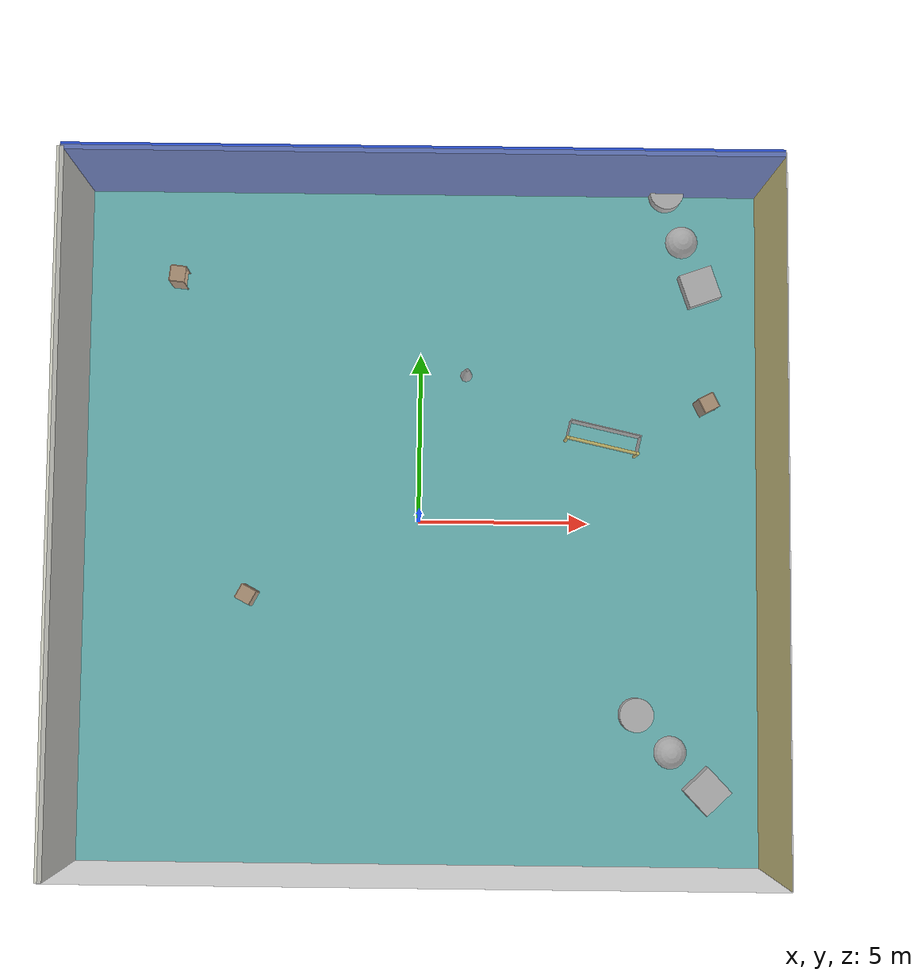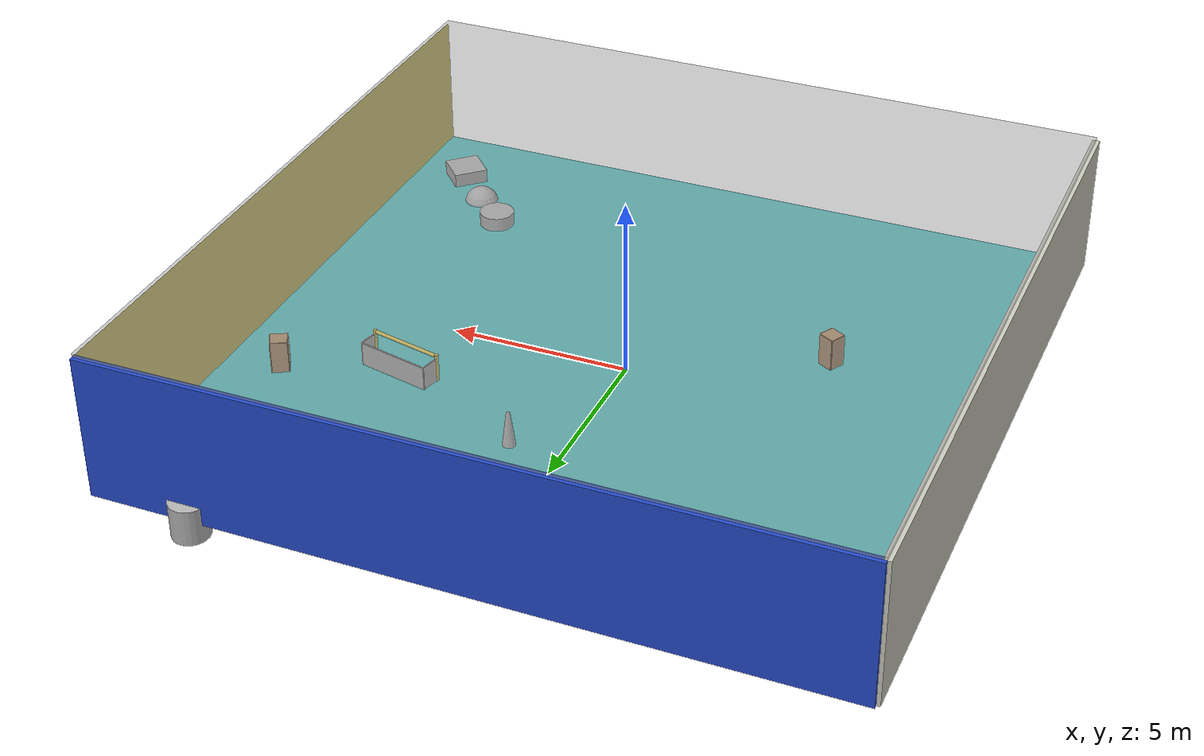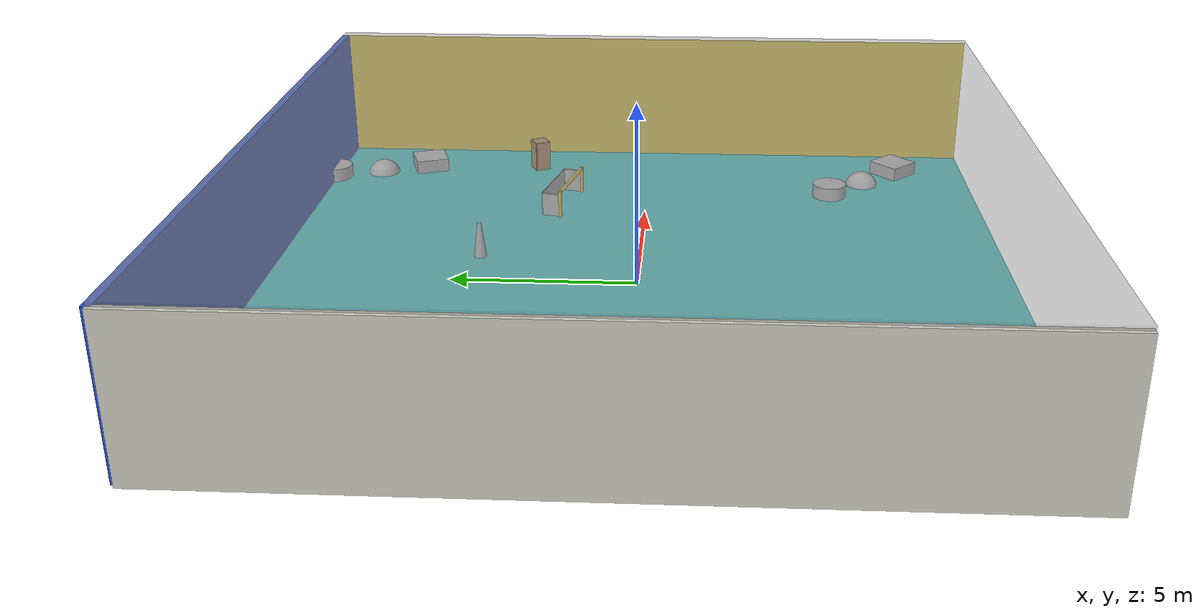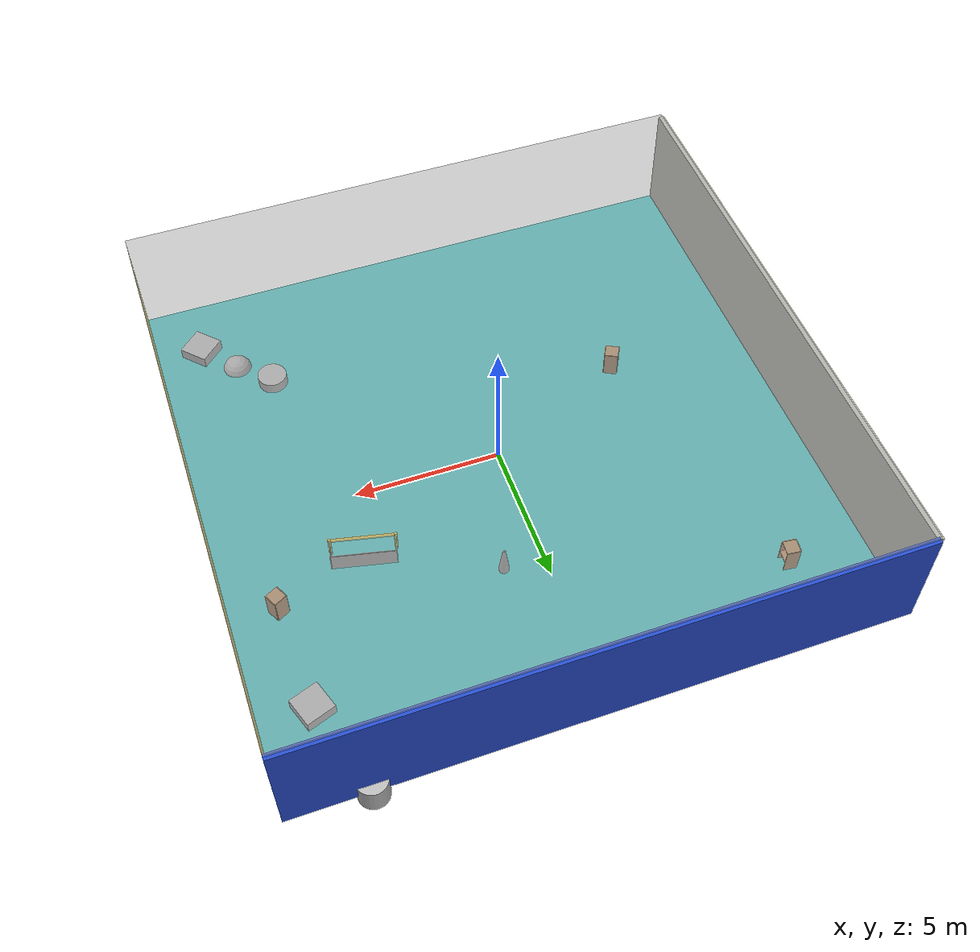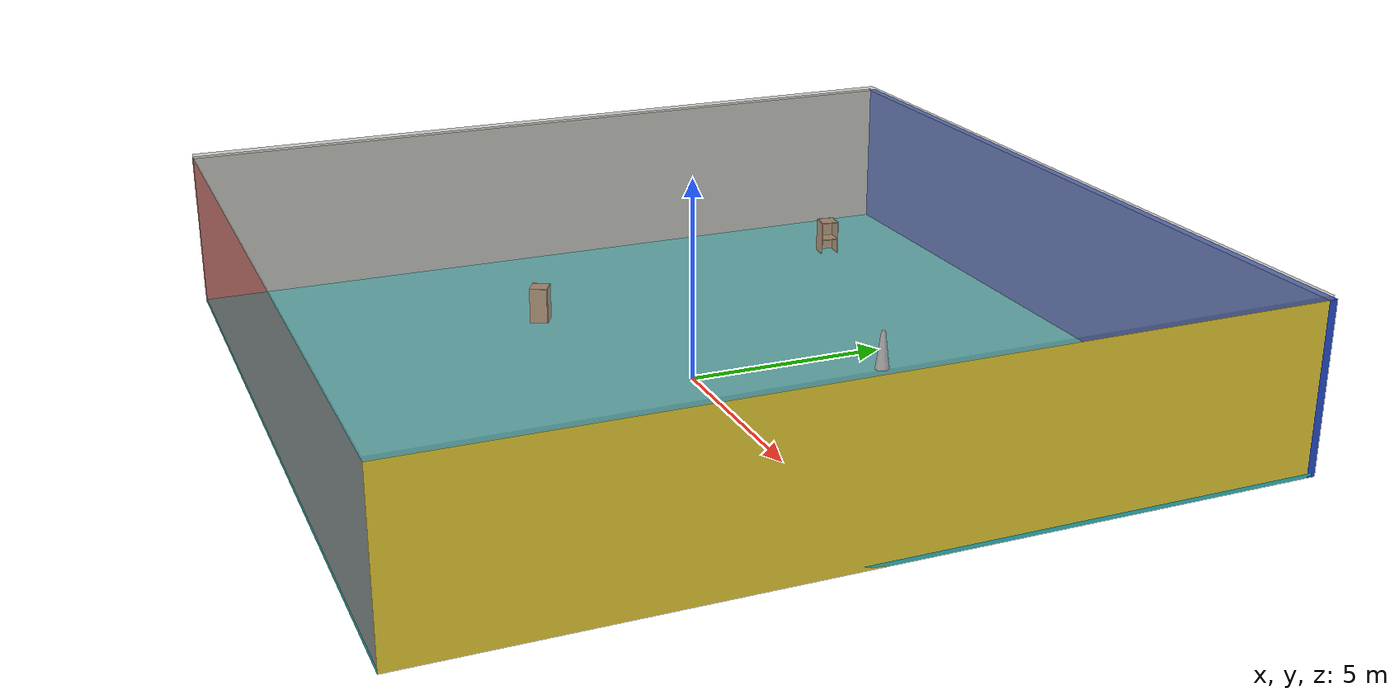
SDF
<sdf version="1.4">
 <world name="default">
  <physics type="ode">
   <max_step_size>0.001</max_step_size>
   <real_time_factor>1</real_time_factor>
   <real_time_update_rate>1000</real_time_update_rate>
   <gravity>0 0 -9.8</gravity>
  </physics>
  <scene><ambient>0.4 0.4 0.4 1</ambient><background>0.7 0.7 0.7 1</background><shadows>1</shadows></scene>
  <model name="Surrounding">
   <static>1</static>
   <link name="Ceiling">
    <collision name="Ceiling_Collision"><geometry><box><size>20 20 0.1</size></box></geometry></collision>
    <visual name="Ceiling_Visual">
     <geometry><box><size>20 20 0.1</size></box></geometry>
     <material>
      <script><uri>file://media/materials/scripts/gazebo.material</uri><name>Gazebo/GreyTransparent</name></script>
     </material>
    </visual>
    <pose>0 0 4.05 0 0 0</pose>
   </link>
   <link name="Wall_South">
    <collision name="Wall_South_Collision">
     <geometry><box><size>20 0 4</size></box></geometry>
     <pose>0 0 2 0 -0 0</pose>
    </collision>
    <visual name="Wall_South_Visual">
     <pose>0 0 2 0 -0 0</pose>
     <geometry><box><size>20 0 4</size></box></geometry>
     <material>
      <script><uri>file://media/materials/scripts/gazebo.material</uri><name>Gazebo/RedTransparent</name></script>
     </material>
    </visual>
    <velocity_decay><linear>0</linear><angular>0</angular></velocity_decay>
    <pose>0 -10 0 0 -0 0</pose>
   </link>
   <link name="Wall_East">
    <collision name="Wall_21_Collision">
     <geometry><box><size>20 0 4</size></box></geometry>
     <pose>0 0 2 0 -0 0</pose>
    </collision>
    <visual name="Wall_21_Visual">
     <pose>0 0 2 0 -0 0</pose>
     <geometry><box><size>20 0 4</size></box></geometry>
     <material>
      <script><uri>file://media/materials/scripts/gazebo.material</uri><name>Gazebo/ZincYellow</name></script>
     </material>
    </visual>
    <velocity_decay><linear>0</linear><angular>0</angular></velocity_decay>
    <pose>10 0 0 0 -0 1.5708</pose>
   </link>
   <link name="Wall_North">
    <collision name="Wall_22_Collision">
     <geometry><box><size>20 0.2 4</size></box></geometry>
     <pose>0 0 2 0 -0 0</pose>
    </collision>
    <visual name="Wall_22_Visual">
     <pose>0 0 2 0 -0 0</pose>
     <geometry><box><size>20 0.2 4</size></box></geometry>
     <material>
      <script><uri>file://media/materials/scripts/gazebo.material</uri><name>Gazebo/Blue</name></script>
     </material>
    </visual>
    <velocity_decay><linear>0</linear><angular>0</angular></velocity_decay>
    <pose>0 10 0 0 -0 0</pose>
   </link>
   <link name="Wall_West">
    <collision name="Wall_23_Collision">
     <geometry><box><size>20 0.2 4</size></box></geometry>
     <pose>0 0 2 0 -0 0</pose>
    </collision>
    <visual name="Wall_23_Visual">
     <pose>0 0 2 0 -0 0</pose>
     <geometry><box><size>20 0.2 4</size></box></geometry>
     <material>
      <script><uri>file://media/materials/scripts/gazebo.material</uri><name>Gazebo/PaintedWall</name></script>
     </material>
    </visual>
    <velocity_decay><linear>0</linear><angular>0</angular></velocity_decay>
    <pose>-10 0 0 0 0 -1.5708</pose>
   </link>
   <link name="Ground_link">
    <collision name="collision">
     <pose>0 0 .05 0 -0 0</pose>
     <geometry><box><size>20 20 0.1</size></box></geometry>
    </collision>
    <visual name="visual">
     <pose>0 0 .05 0 -0 0</pose>
     <geometry><box><size>20 20 0.1</size></box></geometry>
     <material>
      <script><uri>file://media/materials/scripts/gazebo.material</uri><name>Gazebo/Turquoise</name></script>
     </material>
    </visual>
   </link>
   <static>1</static>
  </model>
  <spherical_coordinates>
   <surface_model>EARTH_WGS84</surface_model>
   <latitude_deg>0</latitude_deg>
   <longitude_deg>0</longitude_deg>
   <elevation>0</elevation>
   <heading_deg>0</heading_deg>
  </spherical_coordinates>
  <light name="lightball_0" type="diffuse">
   <diffuse>0.8 0.8 0.8 1</diffuse>
   <specular>0.2 0.2 0.2 1</specular>
   <attenuation>
    <range>100</range>
    <constant>0.7</constant>
    <linear>0.01</linear>
    <quadratic>0.001</quadratic>
   </attenuation>
   <direction>-0.5 0.1 -0.9</direction>
   <pose>2.80467241656 -8.4963076628 0.643118882182 0 0 0</pose>
  </light>
  <include><uri>model://cabinet</uri><pose>-7.18162059289 7.18149237192 0 0 0 3.02356587497</pose></include>
  <include><uri>model://cabinet</uri><pose>-5.00201592903 -2.22174053541 0 0 0 1.0710480419</pose></include>
  <include>
   <uri>model://construction_cone</uri>
   <pose>1.36693338039 4.39090864323 0 0 0 2.55403218375</pose>
  </include>
  <include>
   <uri>model://robocup_3Dsim_goal</uri>
   <pose>5.35304164951 2.24578265361 0 0 0 1.34901827152</pose>
  </include>
  <include>
   <uri>model://textured_shapes</uri>
   <pose>7.43063733278 -6.69091692421 0 0 0 0.756973965825</pose>
  </include>
  <include><uri>model://cabinet</uri><pose>8.44450185959 3.51759979224 0 0 0 2.049769194</pose></include>
  <include>
   <uri>model://textured_shapes</uri>
   <pose>7.80283291672 8.50967005998 0 0 0 0.336557111844</pose>
  </include>
 </world>
</sdf>

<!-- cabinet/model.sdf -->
<sdf version="1.5">
  <model name="cabinet">
    <static>true</static>
    <link name="cabinet_bottom_plate">
      <inertial>
        <pose>0 0 -1 0 0 0</pose>
        <inertia>
          <ixx>2.050000</ixx>
          <ixy>0</ixy>
          <ixz>0</ixz>
          <iyy>2.050000</iyy>
          <iyz>0</iyz>
          <izz>2.050000</izz>
        </inertia>
        <mass>25.000000</mass>
      </inertial>
      <collision name="cabinet_bottom_plate_geom">
        <pose>0 0 0.010000 0 0 0</pose>
        <geometry>
          <box>
            <size>0.450000 0.450000 0.020000</size>
          </box>
        </geometry>
      </collision>
      <visual name="cabinet_bottom_plate_geom_visual">
        <pose>0 0 0.010000 0 0 0</pose>
        <geometry>
          <box>
            <size>0.450000 0.450000 0.020000</size>
          </box>
        </geometry>
        <material>
          <script>
            <uri>model://media/materials/scripts/gazebo.material</uri>
            <name>Gazebo/Wood</name>
          </script>
        </material>
      </visual>
      <collision name="cabinet_bottom_plate_geom_cabinet_back_plate">
        <pose>0.235000 0 0.510000 0 0 0</pose>
        <geometry>
          <box>
            <size>0.020000 0.450000 1.020000</size>
          </box>
        </geometry>
      </collision>
      <visual name="cabinet_bottom_plate_geom_cabinet_back_plate_visual">
        <pose>0.235000 0 0.510000 0 0 0</pose>
        <geometry>
          <box>
            <size>0.020000 0.450000 1.020000</size>
          </box>
        </geometry>
        <material>
          <script>
            <uri>model://media/materials/scripts/gazebo.material</uri>
            <name>Gazebo/Wood</name>
          </script>
        </material>
      </visual>
      <collision name="cabinet_bottom_plate_geom_cabinet_left_plate">
        <pose>0 0.235000 0.510000 0 0 0</pose>
        <geometry>
          <box>
            <size>0.450000 0.020000 1.020000</size>
          </box>
        </geometry>
      </collision>
      <visual name="cabinet_bottom_plate_geom_cabinet_left_plate_visual">
        <pose>0 0.235000 0.510000 0 0 0</pose>
        <geometry>
          <box>
            <size>0.450000 0.020000 1.020000</size>
          </box>
        </geometry>
        <material>
          <script>
            <uri>model://media/materials/scripts/gazebo.material</uri>
            <name>Gazebo/Wood</name>
          </script>
        </material>
      </visual>
      <collision name="cabinet_bottom_plate_geom_cabinet_middle_plate">
        <pose>0 0 0.510000 0 0 0</pose>
        <geometry>
          <box>
            <size>0.450000 0.450000 0.020000</size>
          </box>
        </geometry>
      </collision>
      <visual name="cabinet_bottom_plate_geom_cabinet_middle_plate_visual">
        <pose>0 0 0.510000 0 0 0</pose>
        <geometry>
          <box>
            <size>0.450000 0.450000 0.020000</size>
          </box>
        </geometry>
        <material>
          <script>
            <uri>model://media/materials/scripts/gazebo.material</uri>
            <name>Gazebo/Wood</name>
          </script>
        </material>
      </visual>
      <collision name="cabinet_bottom_plate_geom_cabinet_right_plate">
        <pose>0 -0.235000 0.510000 0 0 0</pose>
        <geometry>
          <box>
            <size>0.450000 0.020000 1.020000</size>
          </box>
        </geometry>
      </collision>
      <visual name="cabinet_bottom_plate_geom_cabinet_right_plate_visual">
        <pose>0 -0.235000 0.510000 0 0 0</pose>
        <geometry>
          <box>
            <size>0.450000 0.020000 1.020000</size>
          </box>
        </geometry>
        <material>
          <script>
            <uri>model://media/materials/scripts/gazebo.material</uri>
            <name>Gazebo/Wood</name>
          </script>
        </material>
      </visual>
      <collision name="cabinet_bottom_plate_geom_cabinet_top_plate">
        <pose>0 0 1.010000 0 0 0</pose>
        <geometry>
          <box>
            <size>0.450000 0.450000 0.020000</size>
          </box>
        </geometry>
      </collision>
      <visual name="cabinet_bottom_plate_geom_cabinet_top_plate_visual">
        <pose>0 0 1.010000 0 0 0</pose>
        <geometry>
          <box>
            <size>0.450000 0.450000 0.020000</size>
          </box>
        </geometry>
        <material>
          <script>
            <uri>model://media/materials/scripts/gazebo.material</uri>
            <name>Gazebo/Wood</name>
          </script>
        </material>
      </visual>
    </link>
  </model>
</sdf>

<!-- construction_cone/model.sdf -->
<sdf version="1.5">
  <model name="Construction Cone">
    <link name="link">
      <collision name="collision">
        <geometry>
          <mesh>
            <scale>10 10 10</scale>
            <uri>file://isr-testbed/construction_cone/meshes/construction_cone.dae</uri>
          </mesh>
        </geometry>
      </collision>
      <visual name="visual">
        <geometry>
          <mesh>
            <scale>10 10 10</scale>
            <uri>file://isr-testbed/construction_cone/meshes/construction_cone.dae</uri>
          </mesh>
        </geometry>
      </visual>
    </link>
  </model>
</sdf>

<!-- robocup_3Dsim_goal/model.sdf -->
<sdf version="1.5">
  <model name="robocup_3d_goal">
    <static>true</static>
    <link name="left_post">
      <pose>0 1.05 0.45 0 0 0</pose>
      <collision name="collision">
        <geometry>
          <cylinder>
            <radius>0.05</radius>
            <length>0.9</length>
          </cylinder>
        </geometry>
      </collision>
      <visual name="visual">
        <geometry>
          <cylinder>
            <radius>0.05</radius>
            <length>0.9</length>
          </cylinder>
        </geometry>
        <material>
          <script>
            <uri>file://media/materials/scripts/gazebo.material</uri>
            <name>Gazebo/ZincYellow</name>
          </script>
        </material>
      </visual>
    </link>
    <link name="left_support_horiz_lower">
      <pose>0.30 1.05 0.01 0 0 0</pose>
      <collision name="collision">
        <geometry>
          <box>
            <size>0.50 0.02 0.02</size>
          </box>
        </geometry>
      </collision>
      <visual name="visual">
        <geometry>
          <box>
            <size>0.50 0.02 0.02</size>
          </box>
        </geometry>
        <material>
          <script>
            <uri>file://media/materials/scripts/gazebo.material</uri>
            <name>Gazebo/White</name>
          </script>
        </material>
      </visual>
    </link>
    <link name="left_support_horiz_upper">
      <pose>0.30 1.05 0.79 0 0 0</pose>
      <collision name="collision">
        <geometry>
          <box>
            <size>0.50 0.02 0.02</size>
          </box>
        </geometry>
      </collision>
      <visual name="visual">
        <geometry>
          <box>
            <size>0.50 0.02 0.02</size>
          </box>
        </geometry>
        <material>
          <script>
            <uri>file://media/materials/scripts/gazebo.material</uri>
            <name>Gazebo/White</name>
          </script>
        </material>
      </visual>
    </link>
    <link name="left_support_vertical">
      <pose>0.56 1.05 0.4 0 1.5708 0</pose>
      <collision name="collision">
        <geometry>
          <box>
            <size>0.80 0.02 0.02</size>
          </box>
        </geometry>
      </collision>
      <visual name="visual">
        <geometry>
          <box>
            <size>0.80 0.02 0.02</size>
          </box>
        </geometry>
        <material>
          <script>
            <uri>file://media/materials/scripts/gazebo.material</uri>
            <name>Gazebo/White</name>
          </script>
        </material>
      </visual>
    </link>
    <link name="right_support_horiz_lower">
      <pose>0.30 -1.05 0.01 0 0 0</pose>
      <collision name="collision">
        <geometry>
          <box>
            <size>0.50 0.02 0.02</size>
          </box>
        </geometry>
      </collision>
      <visual name="visual">
        <geometry>
          <box>
            <size>0.50 0.02 0.02</size>
          </box>
        </geometry>
        <material>
          <script>
            <uri>file://media/materials/scripts/gazebo.material</uri>
            <name>Gazebo/White</name>
          </script>
        </material>
      </visual>
    </link>
    <link name="right_support_horiz_upper">
      <pose>0.30 -1.05 0.79 0 0 0</pose>
      <collision name="collision">
        <geometry>
          <box>
            <size>0.50 0.02 0.02</size>
          </box>
        </geometry>
      </collision>
      <visual name="visual">
        <geometry>
          <box>
            <size>0.50 0.02 0.02</size>
          </box>
        </geometry>
        <material>
          <script>
            <uri>file://media/materials/scripts/gazebo.material</uri>
            <name>Gazebo/White</name>
          </script>
        </material>
      </visual>
    </link>
    <link name="right_support_vertical">
      <pose>0.56 -1.05 0.4 0 1.5708 0</pose>
      <collision name="collision">
        <geometry>
          <box>
            <size>0.80 0.02 0.02</size>
          </box>
        </geometry>
      </collision>
      <visual name="visual">
        <geometry>
          <box>
            <size>0.80 0.02 0.02</size>
          </box>
        </geometry>
        <material>
          <script>
            <uri>file://media/materials/scripts/gazebo.material</uri>
            <name>Gazebo/White</name>
          </script>
        </material>
      </visual>
    </link>
    <link name="center_support_horiz_lower">
      <pose>0.56 0 0.01 0 1.5708 0</pose>
      <collision name="collision">
        <geometry>
          <box>
            <size>0.02 2.08 0.02</size>
          </box>
        </geometry>
      </collision>
      <visual name="visual">
        <geometry>
          <box>
            <size>0.02 2.08 0.02</size>
          </box>
        </geometry>
        <material>
          <script>
            <uri>file://media/materials/scripts/gazebo.material</uri>
            <name>Gazebo/White</name>
          </script>
        </material>
      </visual>
    </link>
    <link name="center_support_horiz_upper">
      <pose>0.56 0 0.79 0 1.5708 0</pose>
      <collision name="collision">
        <geometry>
          <box>
            <size>0.02 2.08 0.02</size>
          </box>
        </geometry>
      </collision>
      <visual name="visual">
        <geometry>
          <box>
            <size>0.02 2.08 0.02</size>
          </box>
        </geometry>
        <material>
          <script>
            <uri>file://media/materials/scripts/gazebo.material</uri>
            <name>Gazebo/White</name>
          </script>
        </material>
      </visual>
    </link>
    <link name="right_post">
      <pose>0 -1.05 0.45 0 0 0</pose>
      <collision name="collision">
        <geometry>
          <cylinder>
            <radius>0.05</radius>
            <length>0.9</length>
          </cylinder>
        </geometry>
      </collision>
      <visual name="visual">
        <geometry>
          <cylinder>
            <radius>0.05</radius>
            <length>0.9</length>
          </cylinder>
        </geometry>
        <material>
          <script>
            <uri>file://media/materials/scripts/gazebo.material</uri>
            <name>Gazebo/ZincYellow</name>
          </script>
        </material>
      </visual>
    </link>
    <link name="crossbar">
      <pose>0 0 0.85 1.57 1.57 0</pose>
      <collision name="collision">
        <geometry>
          <cylinder>
            <radius>0.05</radius>
            <length>2.0</length>
          </cylinder>
        </geometry>
      </collision>
      <visual name="visual">
        <geometry>
          <cylinder>
            <radius>0.05</radius>
            <length>2.0</length>
          </cylinder>
        </geometry>
        <material>
          <script>
            <uri>file://media/materials/scripts/gazebo.material</uri>
            <name>Gazebo/ZincYellow</name>
          </script>
        </material>
      </visual>
    </link>
    <link name="center_net">
      <pose>0.56 0 0.40 0 0 0</pose>
      <collision name="collision">
        <geometry>
          <box>
            <size>0.01 2.1 0.80</size>
          </box>
        </geometry>
      </collision>
      <visual name="visual">
        <geometry>
          <box>
            <size>0.01 2.1 0.80</size>
          </box>
        </geometry>
        <material>
          <script>
            <uri>model://../model_source/models/robocup09_spl_field/materials/scripts/</uri>
            <uri>model://../model_source/models/robocup09_spl_field/materials/textures/</uri>
            <name>RoboCup/Net</name>
          </script>
        </material>
      </visual>
    </link>
    <link name="left_net">
      <pose>0.30 1.05 0.40 0 0 0</pose>
      <collision name="collision">
        <geometry>
          <box>
            <size>0.50 0.01 0.76</size>
          </box>
        </geometry>
      </collision>
      <visual name="visual">
        <geometry>
          <box>
            <size>0.50 0.01 0.76</size>
          </box>
        </geometry>
        <material>
          <script>
            <uri>model://../model_source/models/robocup09_spl_field/materials/scripts/</uri>
            <uri>model://../model_source/models/robocup09_spl_field/materials/textures/</uri>
            <name>RoboCup/Net</name>
          </script>
        </material>
      </visual>
    </link>
    <link name="right_net">
      <pose>0.30 -1.05 0.40 0 0 0</pose>
      <collision name="collision">
        <geometry>
          <box>
            <size>0.50 0.01 0.76</size>
          </box>
        </geometry>
      </collision>
      <visual name="visual">
        <geometry>
          <box>
            <size>0.50 0.01 0.76</size>
          </box>
        </geometry>
        <material>
          <script>
            <uri>model://../model_source/models/robocup09_spl_field/materials/scripts/</uri>
            <uri>model://../model_source/models/robocup09_spl_field/materials/textures/</uri>
            <name>RoboCup/Net</name>
          </script>
        </material>
      </visual>
    </link>
  </model>
</sdf>

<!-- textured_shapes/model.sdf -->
<sdf version="1.6">
  <model name="textured_shapes">
    <pose>0 0 0.5 0 0 0</pose>
    <link name="box">
      <pose>0 -1.5 0 0 0 0</pose>
      <collision name="collision">
        <geometry>
          <box>
            <size>1 1 1</size>
          </box>
        </geometry>
      </collision>
      <visual name="visual">
        <geometry>
          <box>
            <size>1 1 1</size>
          </box>
        </geometry>
        <material>
          <script>
            <uri>model://../model_source/models/textured_shapes/materials/scripts</uri>
            <uri>model://../model_source/models/textured_shapes/materials/textures</uri>
            <name>TexturedShape/Squares</name>
          </script>
        </material>
      </visual>
    </link>
    <link name="sphere">
      <collision name="collision">
        <geometry>
          <sphere>
            <radius>0.5</radius>
          </sphere>
        </geometry>
      </collision>
      <visual name="visual">
        <geometry>
          <sphere>
            <radius>0.5</radius>
          </sphere>
        </geometry>
        <material>
          <script>
            <uri>model://../model_source/models/textured_shapes/materials/scripts</uri>
            <uri>model://../model_source/models/textured_shapes/materials/textures</uri>
            <name>TexturedShape/Squares</name>
          </script>
        </material>
      </visual>
    </link>
    <link name="cylinder">
      <pose>0 1.5 0 0 0 0</pose>
      <collision name="collision">
        <geometry>
          <cylinder>
            <radius>0.5</radius>
            <length>1</length>
          </cylinder>
        </geometry>
      </collision>
      <visual name="visual">
        <geometry>
          <cylinder>
            <radius>0.5</radius>
            <length>1</length>
          </cylinder>
        </geometry>
        <material>
          <script>
            <uri>model://../model_source/models/textured_shapes/materials/scripts</uri>
            <uri>model://../model_source/models/textured_shapes/materials/textures</uri>
            <name>TexturedShape/Squares</name>
          </script>
        </material>
      </visual>
    </link>
  </model>
</sdf>
